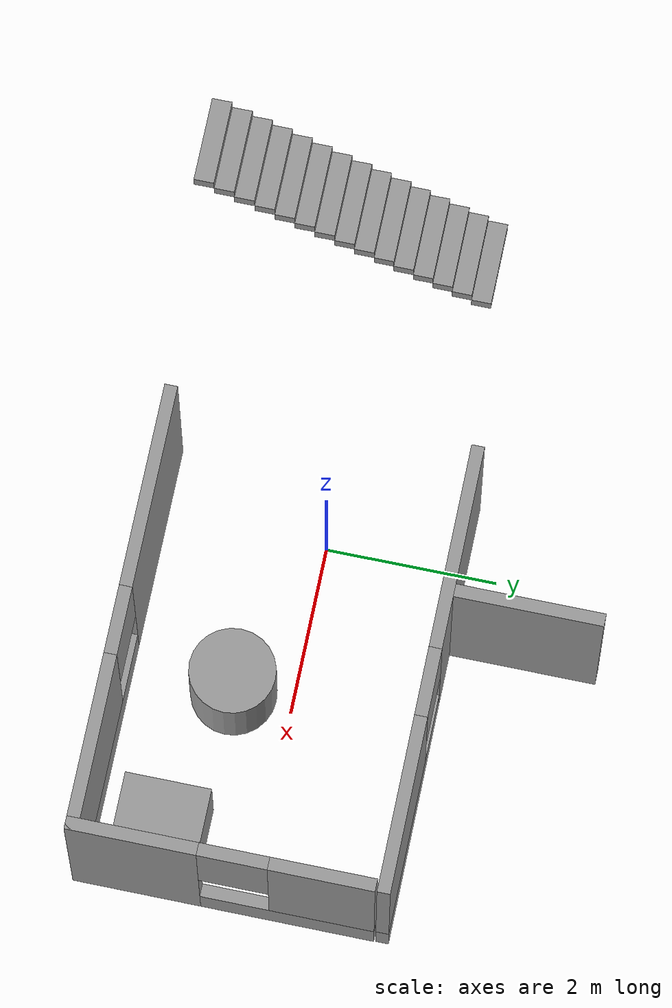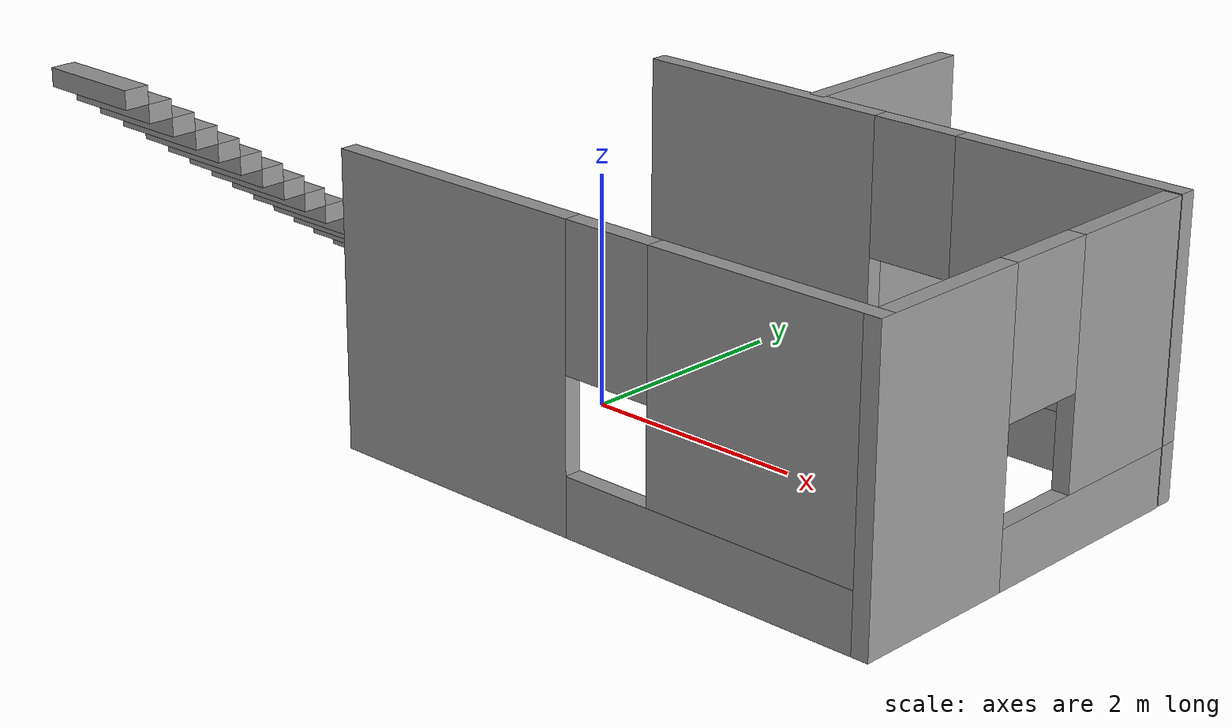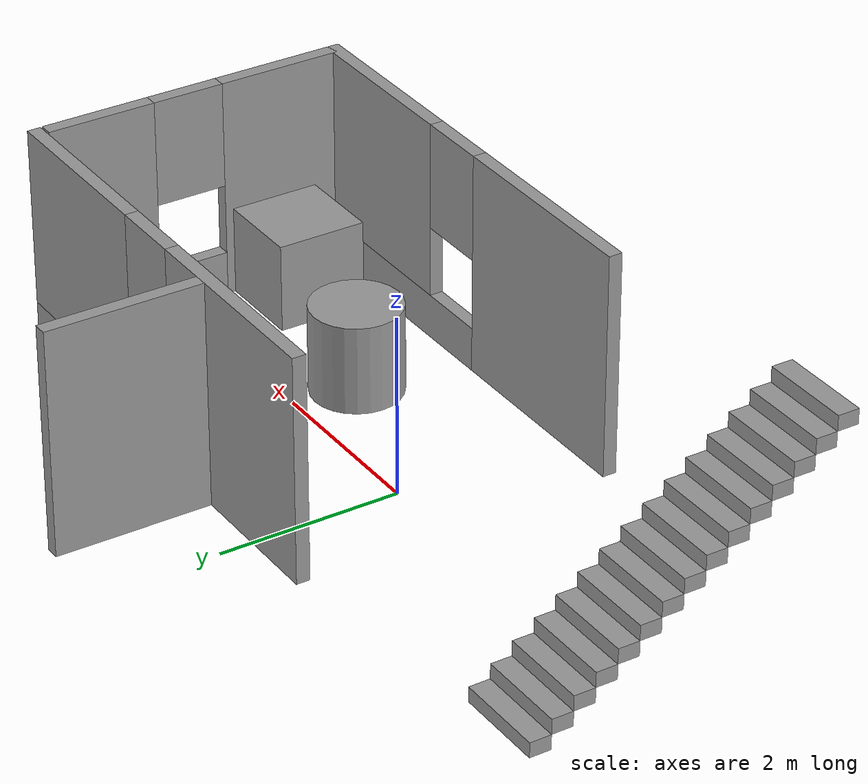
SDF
<sdf version="1.7">
 <model name="housing">
  <link name="Stairs_2">
   <visual name="Stairs_2_Visual_0">
    <pose>-3.77414 1.15965 0.083333 0 -0 0</pose>
    <geometry><box><size>1 0.233333 0.166667</size></box></geometry>
    <material>
     <script><uri>file://media/materials/scripts/gazebo.material</uri><name>Gazebo/Grey</name></script>
     <ambient>1 1 1 1</ambient>
     <shader type="pixel"/>
    </material>
    <meta><layer>0</layer></meta>
   </visual>
   <visual name="Stairs_2_Visual_1">
    <pose>-3.77414 0.926314 0.25 0 -0 0</pose>
    <geometry><box><size>1 0.233333 0.166667</size></box></geometry>
    <material>
     <script><uri>file://media/materials/scripts/gazebo.material</uri><name>Gazebo/Grey</name></script>
     <ambient>1 1 1 1</ambient>
     <shader type="pixel"/>
    </material>
    <meta><layer>0</layer></meta>
   </visual>
   <visual name="Stairs_2_Visual_2">
    <pose>-3.77414 0.692981 0.416667 0 -0 0</pose>
    <geometry><box><size>1 0.233333 0.166667</size></box></geometry>
    <material>
     <script><uri>file://media/materials/scripts/gazebo.material</uri><name>Gazebo/Grey</name></script>
     <ambient>1 1 1 1</ambient>
     <shader type="pixel"/>
    </material>
    <meta><layer>0</layer></meta>
   </visual>
   <visual name="Stairs_2_Visual_3">
    <pose>-3.77414 0.459648 0.583333 0 -0 0</pose>
    <geometry><box><size>1 0.233333 0.166667</size></box></geometry>
    <material>
     <script><uri>file://media/materials/scripts/gazebo.material</uri><name>Gazebo/Grey</name></script>
     <ambient>1 1 1 1</ambient>
     <shader type="pixel"/>
    </material>
    <meta><layer>0</layer></meta>
   </visual>
   <visual name="Stairs_2_Visual_4">
    <pose>-3.77414 0.226314 0.75 0 -0 0</pose>
    <geometry><box><size>1 0.233333 0.166667</size></box></geometry>
    <material>
     <script><uri>file://media/materials/scripts/gazebo.material</uri><name>Gazebo/Grey</name></script>
     <ambient>1 1 1 1</ambient>
     <shader type="pixel"/>
    </material>
    <meta><layer>0</layer></meta>
   </visual>
   <visual name="Stairs_2_Visual_5">
    <pose>-3.77414 -0.007019 0.916667 0 -0 0</pose>
    <geometry><box><size>1 0.233333 0.166667</size></box></geometry>
    <material>
     <script><uri>file://media/materials/scripts/gazebo.material</uri><name>Gazebo/Grey</name></script>
     <ambient>1 1 1 1</ambient>
     <shader type="pixel"/>
    </material>
    <meta><layer>0</layer></meta>
   </visual>
   <visual name="Stairs_2_Visual_6">
    <pose>-3.77414 -0.240352 1.08333 0 -0 0</pose>
    <geometry><box><size>1 0.233333 0.166667</size></box></geometry>
    <material>
     <script><uri>file://media/materials/scripts/gazebo.material</uri><name>Gazebo/Grey</name></script>
     <ambient>1 1 1 1</ambient>
     <shader type="pixel"/>
    </material>
    <meta><layer>0</layer></meta>
   </visual>
   <visual name="Stairs_2_Visual_7">
    <pose>-3.77414 -0.473686 1.25 0 -0 0</pose>
    <geometry><box><size>1 0.233333 0.166667</size></box></geometry>
    <material>
     <script><uri>file://media/materials/scripts/gazebo.material</uri><name>Gazebo/Grey</name></script>
     <ambient>1 1 1 1</ambient>
     <shader type="pixel"/>
    </material>
    <meta><layer>0</layer></meta>
   </visual>
   <visual name="Stairs_2_Visual_8">
    <pose>-3.77414 -0.707019 1.41667 0 -0 0</pose>
    <geometry><box><size>1 0.233333 0.166667</size></box></geometry>
    <material>
     <script><uri>file://media/materials/scripts/gazebo.material</uri><name>Gazebo/Grey</name></script>
     <ambient>1 1 1 1</ambient>
     <shader type="pixel"/>
    </material>
    <meta><layer>0</layer></meta>
   </visual>
   <visual name="Stairs_2_Visual_9">
    <pose>-3.77414 -0.940352 1.58333 0 -0 0</pose>
    <geometry><box><size>1 0.233333 0.166667</size></box></geometry>
    <material>
     <script><uri>file://media/materials/scripts/gazebo.material</uri><name>Gazebo/Grey</name></script>
     <ambient>1 1 1 1</ambient>
     <shader type="pixel"/>
    </material>
    <meta><layer>0</layer></meta>
   </visual>
   <visual name="Stairs_2_Visual_10">
    <pose>-3.77414 -1.17369 1.75 0 -0 0</pose>
    <geometry><box><size>1 0.233333 0.166667</size></box></geometry>
    <material>
     <script><uri>file://media/materials/scripts/gazebo.material</uri><name>Gazebo/Grey</name></script>
     <ambient>1 1 1 1</ambient>
     <shader type="pixel"/>
    </material>
    <meta><layer>0</layer></meta>
   </visual>
   <visual name="Stairs_2_Visual_11">
    <pose>-3.77414 -1.40702 1.91667 0 -0 0</pose>
    <geometry><box><size>1 0.233333 0.166667</size></box></geometry>
    <material>
     <script><uri>file://media/materials/scripts/gazebo.material</uri><name>Gazebo/Grey</name></script>
     <ambient>1 1 1 1</ambient>
     <shader type="pixel"/>
    </material>
    <meta><layer>0</layer></meta>
   </visual>
   <visual name="Stairs_2_Visual_12">
    <pose>-3.77414 -1.64035 2.08333 0 -0 0</pose>
    <geometry><box><size>1 0.233333 0.166667</size></box></geometry>
    <material>
     <script><uri>file://media/materials/scripts/gazebo.material</uri><name>Gazebo/Grey</name></script>
     <ambient>1 1 1 1</ambient>
     <shader type="pixel"/>
    </material>
    <meta><layer>0</layer></meta>
   </visual>
   <visual name="Stairs_2_Visual_13">
    <pose>-3.77414 -1.87369 2.25 0 -0 0</pose>
    <geometry><box><size>1 0.233333 0.166667</size></box></geometry>
    <material>
     <script><uri>file://media/materials/scripts/gazebo.material</uri><name>Gazebo/Grey</name></script>
     <ambient>1 1 1 1</ambient>
     <shader type="pixel"/>
    </material>
    <meta><layer>0</layer></meta>
   </visual>
   <visual name="Stairs_2_Visual_14">
    <pose>-3.77414 -2.10702 2.41667 0 -0 0</pose>
    <geometry><box><size>1 0.233333 0.166667</size></box></geometry>
    <material>
     <script><uri>file://media/materials/scripts/gazebo.material</uri><name>Gazebo/Grey</name></script>
     <ambient>1 1 1 1</ambient>
     <shader type="pixel"/>
    </material>
    <meta><layer>0</layer></meta>
   </visual>
   <collision name="Stairs_2_Collision_0">
    <pose>-3.77414 1.15965 0.083333 0 -0 0</pose>
    <geometry><box><size>1 0.233333 0.166667</size></box></geometry>
    <surface>
     <friction>
      <ode><mu>1</mu><mu2>1</mu2><fdir1>0 0 0</fdir1><slip1>0</slip1><slip2>0</slip2></ode>
      <torsional>
       <coefficient>1</coefficient>
       <patch_radius>0</patch_radius>
       <surface_radius>0</surface_radius>
       <use_patch_radius>1</use_patch_radius>
       <ode><slip>0</slip></ode>
      </torsional>
     </friction>
     <bounce><restitution_coefficient>0</restitution_coefficient><threshold>1e+06</threshold></bounce>
     <contact>
      <collide_without_contact>0</collide_without_contact>
      <collide_without_contact_bitmask>1</collide_without_contact_bitmask>
      <collide_bitmask>1</collide_bitmask>
      <ode>
       <soft_cfm>0</soft_cfm>
       <soft_erp>0.2</soft_erp>
       <kp>1e+13</kp>
       <kd>1</kd>
       <max_vel>0.01</max_vel>
       <min_depth>0</min_depth>
      </ode>
      <bullet>
       <split_impulse>1</split_impulse>
       <split_impulse_penetration_threshold>-0.01</split_impulse_penetration_threshold>
       <soft_cfm>0</soft_cfm>
       <soft_erp>0.2</soft_erp>
       <kp>1e+13</kp>
       <kd>1</kd>
      </bullet>
     </contact>
    </surface>
   </collision>
   <collision name="Stairs_2_Collision_1">
    <pose>-3.77414 0.926314 0.25 0 -0 0</pose>
    <geometry><box><size>1 0.233333 0.166667</size></box></geometry>
    <surface>
     <friction>
      <ode><mu>1</mu><mu2>1</mu2><fdir1>0 0 0</fdir1><slip1>0</slip1><slip2>0</slip2></ode>
      <torsional>
       <coefficient>1</coefficient>
       <patch_radius>0</patch_radius>
       <surface_radius>0</surface_radius>
       <use_patch_radius>1</use_patch_radius>
       <ode><slip>0</slip></ode>
      </torsional>
     </friction>
     <bounce><restitution_coefficient>0</restitution_coefficient><threshold>1e+06</threshold></bounce>
     <contact>
      <collide_without_contact>0</collide_without_contact>
      <collide_without_contact_bitmask>1</collide_without_contact_bitmask>
      <collide_bitmask>1</collide_bitmask>
      <ode>
       <soft_cfm>0</soft_cfm>
       <soft_erp>0.2</soft_erp>
       <kp>1e+13</kp>
       <kd>1</kd>
       <max_vel>0.01</max_vel>
       <min_depth>0</min_depth>
      </ode>
      <bullet>
       <split_impulse>1</split_impulse>
       <split_impulse_penetration_threshold>-0.01</split_impulse_penetration_threshold>
       <soft_cfm>0</soft_cfm>
       <soft_erp>0.2</soft_erp>
       <kp>1e+13</kp>
       <kd>1</kd>
      </bullet>
     </contact>
    </surface>
   </collision>
   <collision name="Stairs_2_Collision_2">
    <pose>-3.77414 0.692981 0.416667 0 -0 0</pose>
    <geometry><box><size>1 0.233333 0.166667</size></box></geometry>
    <surface>
     <friction>
      <ode><mu>1</mu><mu2>1</mu2><fdir1>0 0 0</fdir1><slip1>0</slip1><slip2>0</slip2></ode>
      <torsional>
       <coefficient>1</coefficient>
       <patch_radius>0</patch_radius>
       <surface_radius>0</surface_radius>
       <use_patch_radius>1</use_patch_radius>
       <ode><slip>0</slip></ode>
      </torsional>
     </friction>
     <bounce><restitution_coefficient>0</restitution_coefficient><threshold>1e+06</threshold></bounce>
     <contact>
      <collide_without_contact>0</collide_without_contact>
      <collide_without_contact_bitmask>1</collide_without_contact_bitmask>
      <collide_bitmask>1</collide_bitmask>
      <ode>
       <soft_cfm>0</soft_cfm>
       <soft_erp>0.2</soft_erp>
       <kp>1e+13</kp>
       <kd>1</kd>
       <max_vel>0.01</max_vel>
       <min_depth>0</min_depth>
      </ode>
      <bullet>
       <split_impulse>1</split_impulse>
       <split_impulse_penetration_threshold>-0.01</split_impulse_penetration_threshold>
       <soft_cfm>0</soft_cfm>
       <soft_erp>0.2</soft_erp>
       <kp>1e+13</kp>
       <kd>1</kd>
      </bullet>
     </contact>
    </surface>
   </collision>
   <collision name="Stairs_2_Collision_3">
    <pose>-3.77414 0.459648 0.583333 0 -0 0</pose>
    <geometry><box><size>1 0.233333 0.166667</size></box></geometry>
    <surface>
     <friction>
      <ode><mu>1</mu><mu2>1</mu2><fdir1>0 0 0</fdir1><slip1>0</slip1><slip2>0</slip2></ode>
      <torsional>
       <coefficient>1</coefficient>
       <patch_radius>0</patch_radius>
       <surface_radius>0</surface_radius>
       <use_patch_radius>1</use_patch_radius>
       <ode><slip>0</slip></ode>
      </torsional>
     </friction>
     <bounce><restitution_coefficient>0</restitution_coefficient><threshold>1e+06</threshold></bounce>
     <contact>
      <collide_without_contact>0</collide_without_contact>
      <collide_without_contact_bitmask>1</collide_without_contact_bitmask>
      <collide_bitmask>1</collide_bitmask>
      <ode>
       <soft_cfm>0</soft_cfm>
       <soft_erp>0.2</soft_erp>
       <kp>1e+13</kp>
       <kd>1</kd>
       <max_vel>0.01</max_vel>
       <min_depth>0</min_depth>
      </ode>
      <bullet>
       <split_impulse>1</split_impulse>
       <split_impulse_penetration_threshold>-0.01</split_impulse_penetration_threshold>
       <soft_cfm>0</soft_cfm>
       <soft_erp>0.2</soft_erp>
       <kp>1e+13</kp>
       <kd>1</kd>
      </bullet>
     </contact>
    </surface>
   </collision>
   <collision name="Stairs_2_Collision_4">
    <pose>-3.77414 0.226314 0.75 0 -0 0</pose>
    <geometry><box><size>1 0.233333 0.166667</size></box></geometry>
    <surface>
     <friction>
      <ode><mu>1</mu><mu2>1</mu2><fdir1>0 0 0</fdir1><slip1>0</slip1><slip2>0</slip2></ode>
      <torsional>
       <coefficient>1</coefficient>
       <patch_radius>0</patch_radius>
       <surface_radius>0</surface_radius>
       <use_patch_radius>1</use_patch_radius>
       <ode><slip>0</slip></ode>
      </torsional>
     </friction>
     <bounce><restitution_coefficient>0</restitution_coefficient><threshold>1e+06</threshold></bounce>
     <contact>
      <collide_without_contact>0</collide_without_contact>
      <collide_without_contact_bitmask>1</collide_without_contact_bitmask>
      <collide_bitmask>1</collide_bitmask>
      <ode>
       <soft_cfm>0</soft_cfm>
       <soft_erp>0.2</soft_erp>
       <kp>1e+13</kp>
       <kd>1</kd>
       <max_vel>0.01</max_vel>
       <min_depth>0</min_depth>
      </ode>
      <bullet>
       <split_impulse>1</split_impulse>
       <split_impulse_penetration_threshold>-0.01</split_impulse_penetration_threshold>
       <soft_cfm>0</soft_cfm>
       <soft_erp>0.2</soft_erp>
       <kp>1e+13</kp>
       <kd>1</kd>
      </bullet>
     </contact>
    </surface>
   </collision>
   <collision name="Stairs_2_Collision_5">
    <pose>-3.77414 -0.007019 0.916667 0 -0 0</pose>
    <geometry><box><size>1 0.233333 0.166667</size></box></geometry>
    <surface>
     <friction>
      <ode><mu>1</mu><mu2>1</mu2><fdir1>0 0 0</fdir1><slip1>0</slip1><slip2>0</slip2></ode>
      <torsional>
       <coefficient>1</coefficient>
       <patch_radius>0</patch_radius>
       <surface_radius>0</surface_radius>
       <use_patch_radius>1</use_patch_radius>
       <ode><slip>0</slip></ode>
      </torsional>
     </friction>
     <bounce><restitution_coefficient>0</restitution_coefficient><threshold>1e+06</threshold></bounce>
     <contact>
      <collide_without_contact>0</collide_without_contact>
      <collide_without_contact_bitmask>1</collide_without_contact_bitmask>
      <collide_bitmask>1</collide_bitmask>
      <ode>
       <soft_cfm>0</soft_cfm>
       <soft_erp>0.2</soft_erp>
       <kp>1e+13</kp>
       <kd>1</kd>
       <max_vel>0.01</max_vel>
       <min_depth>0</min_depth>
      </ode>
      <bullet>
       <split_impulse>1</split_impulse>
       <split_impulse_penetration_threshold>-0.01</split_impulse_penetration_threshold>
       <soft_cfm>0</soft_cfm>
       <soft_erp>0.2</soft_erp>
       <kp>1e+13</kp>
       <kd>1</kd>
      </bullet>
     </contact>
    </surface>
   </collision>
   <collision name="Stairs_2_Collision_6">
    <pose>-3.77414 -0.240352 1.08333 0 -0 0</pose>
    <geometry><box><size>1 0.233333 0.166667</size></box></geometry>
    <surface>
     <friction>
      <ode><mu>1</mu><mu2>1</mu2><fdir1>0 0 0</fdir1><slip1>0</slip1><slip2>0</slip2></ode>
      <torsional>
       <coefficient>1</coefficient>
       <patch_radius>0</patch_radius>
       <surface_radius>0</surface_radius>
       <use_patch_radius>1</use_patch_radius>
       <ode><slip>0</slip></ode>
      </torsional>
     </friction>
     <bounce><restitution_coefficient>0</restitution_coefficient><threshold>1e+06</threshold></bounce>
     <contact>
      <collide_without_contact>0</collide_without_contact>
      <collide_without_contact_bitmask>1</collide_without_contact_bitmask>
      <collide_bitmask>1</collide_bitmask>
      <ode>
       <soft_cfm>0</soft_cfm>
       <soft_erp>0.2</soft_erp>
       <kp>1e+13</kp>
       <kd>1</kd>
       <max_vel>0.01</max_vel>
       <min_depth>0</min_depth>
      </ode>
      <bullet>
       <split_impulse>1</split_impulse>
       <split_impulse_penetration_threshold>-0.01</split_impulse_penetration_threshold>
       <soft_cfm>0</soft_cfm>
       <soft_erp>0.2</soft_erp>
       <kp>1e+13</kp>
       <kd>1</kd>
      </bullet>
     </contact>
    </surface>
   </collision>
   <collision name="Stairs_2_Collision_7">
    <pose>-3.77414 -0.473686 1.25 0 -0 0</pose>
    <geometry><box><size>1 0.233333 0.166667</size></box></geometry>
    <surface>
     <friction>
      <ode><mu>1</mu><mu2>1</mu2><fdir1>0 0 0</fdir1><slip1>0</slip1><slip2>0</slip2></ode>
      <torsional>
       <coefficient>1</coefficient>
       <patch_radius>0</patch_radius>
       <surface_radius>0</surface_radius>
       <use_patch_radius>1</use_patch_radius>
       <ode><slip>0</slip></ode>
      </torsional>
     </friction>
     <bounce><restitution_coefficient>0</restitution_coefficient><threshold>1e+06</threshold></bounce>
     <contact>
      <collide_without_contact>0</collide_without_contact>
      <collide_without_contact_bitmask>1</collide_without_contact_bitmask>
      <collide_bitmask>1</collide_bitmask>
      <ode>
       <soft_cfm>0</soft_cfm>
       <soft_erp>0.2</soft_erp>
       <kp>1e+13</kp>
       <kd>1</kd>
       <max_vel>0.01</max_vel>
       <min_depth>0</min_depth>
      </ode>
      <bullet>
       <split_impulse>1</split_impulse>
       <split_impulse_penetration_threshold>-0.01</split_impulse_penetration_threshold>
       <soft_cfm>0</soft_cfm>
       <soft_erp>0.2</soft_erp>
       <kp>1e+13</kp>
       <kd>1</kd>
      </bullet>
     </contact>
    </surface>
   </collision>
   <collision name="Stairs_2_Collision_8">
    <pose>-3.77414 -0.707019 1.41667 0 -0 0</pose>
    <geometry><box><size>1 0.233333 0.166667</size></box></geometry>
    <surface>
     <friction>
      <ode><mu>1</mu><mu2>1</mu2><fdir1>0 0 0</fdir1><slip1>0</slip1><slip2>0</slip2></ode>
      <torsional>
       <coefficient>1</coefficient>
       <patch_radius>0</patch_radius>
       <surface_radius>0</surface_radius>
       <use_patch_radius>1</use_patch_radius>
       <ode><slip>0</slip></ode>
      </torsional>
     </friction>
     <bounce><restitution_coefficient>0</restitution_coefficient><threshold>1e+06</threshold></bounce>
     <contact>
      <collide_without_contact>0</collide_without_contact>
      <collide_without_contact_bitmask>1</collide_without_contact_bitmask>
      <collide_bitmask>1</collide_bitmask>
      <ode>
       <soft_cfm>0</soft_cfm>
       <soft_erp>0.2</soft_erp>
       <kp>1e+13</kp>
       <kd>1</kd>
       <max_vel>0.01</max_vel>
       <min_depth>0</min_depth>
      </ode>
      <bullet>
       <split_impulse>1</split_impulse>
       <split_impulse_penetration_threshold>-0.01</split_impulse_penetration_threshold>
       <soft_cfm>0</soft_cfm>
       <soft_erp>0.2</soft_erp>
       <kp>1e+13</kp>
       <kd>1</kd>
      </bullet>
     </contact>
    </surface>
   </collision>
   <collision name="Stairs_2_Collision_9">
    <pose>-3.77414 -0.940352 1.58333 0 -0 0</pose>
    <geometry><box><size>1 0.233333 0.166667</size></box></geometry>
    <surface>
     <friction>
      <ode><mu>1</mu><mu2>1</mu2><fdir1>0 0 0</fdir1><slip1>0</slip1><slip2>0</slip2></ode>
      <torsional>
       <coefficient>1</coefficient>
       <patch_radius>0</patch_radius>
       <surface_radius>0</surface_radius>
       <use_patch_radius>1</use_patch_radius>
       <ode><slip>0</slip></ode>
      </torsional>
     </friction>
     <bounce><restitution_coefficient>0</restitution_coefficient><threshold>1e+06</threshold></bounce>
     <contact>
      <collide_without_contact>0</collide_without_contact>
      <collide_without_contact_bitmask>1</collide_without_contact_bitmask>
      <collide_bitmask>1</collide_bitmask>
      <ode>
       <soft_cfm>0</soft_cfm>
       <soft_erp>0.2</soft_erp>
       <kp>1e+13</kp>
       <kd>1</kd>
       <max_vel>0.01</max_vel>
       <min_depth>0</min_depth>
      </ode>
      <bullet>
       <split_impulse>1</split_impulse>
       <split_impulse_penetration_threshold>-0.01</split_impulse_penetration_threshold>
       <soft_cfm>0</soft_cfm>
       <soft_erp>0.2</soft_erp>
       <kp>1e+13</kp>
       <kd>1</kd>
      </bullet>
     </contact>
    </surface>
   </collision>
   <collision name="Stairs_2_Collision_10">
    <pose>-3.77414 -1.17369 1.75 0 -0 0</pose>
    <geometry><box><size>1 0.233333 0.166667</size></box></geometry>
    <surface>
     <friction>
      <ode><mu>1</mu><mu2>1</mu2><fdir1>0 0 0</fdir1><slip1>0</slip1><slip2>0</slip2></ode>
      <torsional>
       <coefficient>1</coefficient>
       <patch_radius>0</patch_radius>
       <surface_radius>0</surface_radius>
       <use_patch_radius>1</use_patch_radius>
       <ode><slip>0</slip></ode>
      </torsional>
     </friction>
     <bounce><restitution_coefficient>0</restitution_coefficient><threshold>1e+06</threshold></bounce>
     <contact>
      <collide_without_contact>0</collide_without_contact>
      <collide_without_contact_bitmask>1</collide_without_contact_bitmask>
      <collide_bitmask>1</collide_bitmask>
      <ode>
       <soft_cfm>0</soft_cfm>
       <soft_erp>0.2</soft_erp>
       <kp>1e+13</kp>
       <kd>1</kd>
       <max_vel>0.01</max_vel>
       <min_depth>0</min_depth>
      </ode>
      <bullet>
       <split_impulse>1</split_impulse>
       <split_impulse_penetration_threshold>-0.01</split_impulse_penetration_threshold>
       <soft_cfm>0</soft_cfm>
       <soft_erp>0.2</soft_erp>
       <kp>1e+13</kp>
       <kd>1</kd>
      </bullet>
     </contact>
    </surface>
   </collision>
   <collision name="Stairs_2_Collision_11">
    <pose>-3.77414 -1.40702 1.91667 0 -0 0</pose>
    <geometry><box><size>1 0.233333 0.166667</size></box></geometry>
    <surface>
     <friction>
      <ode><mu>1</mu><mu2>1</mu2><fdir1>0 0 0</fdir1><slip1>0</slip1><slip2>0</slip2></ode>
      <torsional>
       <coefficient>1</coefficient>
       <patch_radius>0</patch_radius>
       <surface_radius>0</surface_radius>
       <use_patch_radius>1</use_patch_radius>
       <ode><slip>0</slip></ode>
      </torsional>
     </friction>
     <bounce><restitution_coefficient>0</restitution_coefficient><threshold>1e+06</threshold></bounce>
     <contact>
      <collide_without_contact>0</collide_without_contact>
      <collide_without_contact_bitmask>1</collide_without_contact_bitmask>
      <collide_bitmask>1</collide_bitmask>
      <ode>
       <soft_cfm>0</soft_cfm>
       <soft_erp>0.2</soft_erp>
       <kp>1e+13</kp>
       <kd>1</kd>
       <max_vel>0.01</max_vel>
       <min_depth>0</min_depth>
      </ode>
      <bullet>
       <split_impulse>1</split_impulse>
       <split_impulse_penetration_threshold>-0.01</split_impulse_penetration_threshold>
       <soft_cfm>0</soft_cfm>
       <soft_erp>0.2</soft_erp>
       <kp>1e+13</kp>
       <kd>1</kd>
      </bullet>
     </contact>
    </surface>
   </collision>
   <collision name="Stairs_2_Collision_12">
    <pose>-3.77414 -1.64035 2.08333 0 -0 0</pose>
    <geometry><box><size>1 0.233333 0.166667</size></box></geometry>
    <surface>
     <friction>
      <ode><mu>1</mu><mu2>1</mu2><fdir1>0 0 0</fdir1><slip1>0</slip1><slip2>0</slip2></ode>
      <torsional>
       <coefficient>1</coefficient>
       <patch_radius>0</patch_radius>
       <surface_radius>0</surface_radius>
       <use_patch_radius>1</use_patch_radius>
       <ode><slip>0</slip></ode>
      </torsional>
     </friction>
     <bounce><restitution_coefficient>0</restitution_coefficient><threshold>1e+06</threshold></bounce>
     <contact>
      <collide_without_contact>0</collide_without_contact>
      <collide_without_contact_bitmask>1</collide_without_contact_bitmask>
      <collide_bitmask>1</collide_bitmask>
      <ode>
       <soft_cfm>0</soft_cfm>
       <soft_erp>0.2</soft_erp>
       <kp>1e+13</kp>
       <kd>1</kd>
       <max_vel>0.01</max_vel>
       <min_depth>0</min_depth>
      </ode>
      <bullet>
       <split_impulse>1</split_impulse>
       <split_impulse_penetration_threshold>-0.01</split_impulse_penetration_threshold>
       <soft_cfm>0</soft_cfm>
       <soft_erp>0.2</soft_erp>
       <kp>1e+13</kp>
       <kd>1</kd>
      </bullet>
     </contact>
    </surface>
   </collision>
   <collision name="Stairs_2_Collision_13">
    <pose>-3.77414 -1.87369 2.25 0 -0 0</pose>
    <geometry><box><size>1 0.233333 0.166667</size></box></geometry>
    <surface>
     <friction>
      <ode><mu>1</mu><mu2>1</mu2><fdir1>0 0 0</fdir1><slip1>0</slip1><slip2>0</slip2></ode>
      <torsional>
       <coefficient>1</coefficient>
       <patch_radius>0</patch_radius>
       <surface_radius>0</surface_radius>
       <use_patch_radius>1</use_patch_radius>
       <ode><slip>0</slip></ode>
      </torsional>
     </friction>
     <bounce><restitution_coefficient>0</restitution_coefficient><threshold>1e+06</threshold></bounce>
     <contact>
      <collide_without_contact>0</collide_without_contact>
      <collide_without_contact_bitmask>1</collide_without_contact_bitmask>
      <collide_bitmask>1</collide_bitmask>
      <ode>
       <soft_cfm>0</soft_cfm>
       <soft_erp>0.2</soft_erp>
       <kp>1e+13</kp>
       <kd>1</kd>
       <max_vel>0.01</max_vel>
       <min_depth>0</min_depth>
      </ode>
      <bullet>
       <split_impulse>1</split_impulse>
       <split_impulse_penetration_threshold>-0.01</split_impulse_penetration_threshold>
       <soft_cfm>0</soft_cfm>
       <soft_erp>0.2</soft_erp>
       <kp>1e+13</kp>
       <kd>1</kd>
      </bullet>
     </contact>
    </surface>
   </collision>
   <collision name="Stairs_2_Collision_14">
    <pose>-3.77414 -2.10702 2.41667 0 -0 0</pose>
    <geometry><box><size>1 0.233333 0.166667</size></box></geometry>
    <surface>
     <friction>
      <ode><mu>1</mu><mu2>1</mu2><fdir1>0 0 0</fdir1><slip1>0</slip1><slip2>0</slip2></ode>
      <torsional>
       <coefficient>1</coefficient>
       <patch_radius>0</patch_radius>
       <surface_radius>0</surface_radius>
       <use_patch_radius>1</use_patch_radius>
       <ode><slip>0</slip></ode>
      </torsional>
     </friction>
     <bounce><restitution_coefficient>0</restitution_coefficient><threshold>1e+06</threshold></bounce>
     <contact>
      <collide_without_contact>0</collide_without_contact>
      <collide_without_contact_bitmask>1</collide_without_contact_bitmask>
      <collide_bitmask>1</collide_bitmask>
      <ode>
       <soft_cfm>0</soft_cfm>
       <soft_erp>0.2</soft_erp>
       <kp>1e+13</kp>
       <kd>1</kd>
       <max_vel>0.01</max_vel>
       <min_depth>0</min_depth>
      </ode>
      <bullet>
       <split_impulse>1</split_impulse>
       <split_impulse_penetration_threshold>-0.01</split_impulse_penetration_threshold>
       <soft_cfm>0</soft_cfm>
       <soft_erp>0.2</soft_erp>
       <kp>1e+13</kp>
       <kd>1</kd>
      </bullet>
     </contact>
    </surface>
   </collision>
  </link>
  <link name="Wall_51_clone_clone_clone">
   <pose>0.871259 2.47337 0 0 0 -1.5708</pose>
   <visual name="Wall_51_Visual">
    <pose>0 0 1.25 0 -0 0</pose>
    <geometry><box><size>1.75 0.15 2.5</size></box></geometry>
    <material>
     <script><uri>file://media/materials/scripts/gazebo.material</uri><name>Gazebo/Grey</name></script>
     <ambient>1 1 1 1</ambient>
     <shader type="pixel"/>
    </material>
    <meta><layer>0</layer></meta>
   </visual>
   <collision name="Wall_51_Collision">
    <pose>0 0 1.25 0 -0 0</pose>
    <geometry><box><size>1.75 0.15 2.5</size></box></geometry>
    <surface>
     <friction>
      <ode><mu>1</mu><mu2>1</mu2><fdir1>0 0 0</fdir1><slip1>0</slip1><slip2>0</slip2></ode>
      <torsional>
       <coefficient>1</coefficient>
       <patch_radius>0</patch_radius>
       <surface_radius>0</surface_radius>
       <use_patch_radius>1</use_patch_radius>
       <ode><slip>0</slip></ode>
      </torsional>
     </friction>
     <bounce><restitution_coefficient>0</restitution_coefficient><threshold>1e+06</threshold></bounce>
     <contact>
      <collide_without_contact>0</collide_without_contact>
      <collide_without_contact_bitmask>1</collide_without_contact_bitmask>
      <collide_bitmask>1</collide_bitmask>
      <ode>
       <soft_cfm>0</soft_cfm>
       <soft_erp>0.2</soft_erp>
       <kp>1e+13</kp>
       <kd>1</kd>
       <max_vel>0.01</max_vel>
       <min_depth>0</min_depth>
      </ode>
      <bullet>
       <split_impulse>1</split_impulse>
       <split_impulse_penetration_threshold>-0.01</split_impulse_penetration_threshold>
       <soft_cfm>0</soft_cfm>
       <soft_erp>0.2</soft_erp>
       <kp>1e+13</kp>
       <kd>1</kd>
      </bullet>
     </contact>
    </surface>
   </collision>
  </link>
  <link name="Wall_54">
   <pose>1.8 -1.95535 0 0 -0 0</pose>
   <visual name="Wall_54_Visual_0">
    <pose>-1.42713 0 1.25 0 -0 0</pose>
    <geometry><box><size>2.39574 0.15 2.5</size></box></geometry>
    <material>
     <script><uri>file://media/materials/scripts/gazebo.material</uri><name>Gazebo/Grey</name></script>
     <ambient>1 1 1 1</ambient>
     <shader type="pixel"/>
    </material>
    <meta><layer>0</layer></meta>
   </visual>
   <visual name="Wall_54_Visual_1">
    <pose>1.19787 0 0.25 0 -0 0</pose>
    <geometry><box><size>2.85426 0.15 0.5</size></box></geometry>
    <material>
     <script><uri>file://media/materials/scripts/gazebo.material</uri><name>Gazebo/Grey</name></script>
     <ambient>1 1 1 1</ambient>
     <shader type="pixel"/>
    </material>
    <meta><layer>0</layer></meta>
   </visual>
   <visual name="Wall_54_Visual_2">
    <pose>1.59787 0 1.5 0 -0 0</pose>
    <geometry><box><size>2.05426 0.15 2</size></box></geometry>
    <material>
     <script><uri>file://media/materials/scripts/gazebo.material</uri><name>Gazebo/Grey</name></script>
     <ambient>1 1 1 1</ambient>
     <shader type="pixel"/>
    </material>
    <meta><layer>0</layer></meta>
   </visual>
   <visual name="Wall_54_Visual_3">
    <pose>0.170737 0 1.9 0 -0 0</pose>
    <geometry><box><size>0.8 0.15 1.2</size></box></geometry>
    <material>
     <script><uri>file://media/materials/scripts/gazebo.material</uri><name>Gazebo/Grey</name></script>
     <ambient>1 1 1 1</ambient>
     <shader type="pixel"/>
    </material>
    <meta><layer>0</layer></meta>
   </visual>
   <collision name="Wall_54_Collision_0">
    <pose>-1.42713 0 1.25 0 -0 0</pose>
    <geometry><box><size>2.39574 0.15 2.5</size></box></geometry>
    <surface>
     <friction>
      <ode><mu>1</mu><mu2>1</mu2><fdir1>0 0 0</fdir1><slip1>0</slip1><slip2>0</slip2></ode>
      <torsional>
       <coefficient>1</coefficient>
       <patch_radius>0</patch_radius>
       <surface_radius>0</surface_radius>
       <use_patch_radius>1</use_patch_radius>
       <ode><slip>0</slip></ode>
      </torsional>
     </friction>
     <bounce><restitution_coefficient>0</restitution_coefficient><threshold>1e+06</threshold></bounce>
     <contact>
      <collide_without_contact>0</collide_without_contact>
      <collide_without_contact_bitmask>1</collide_without_contact_bitmask>
      <collide_bitmask>1</collide_bitmask>
      <ode>
       <soft_cfm>0</soft_cfm>
       <soft_erp>0.2</soft_erp>
       <kp>1e+13</kp>
       <kd>1</kd>
       <max_vel>0.01</max_vel>
       <min_depth>0</min_depth>
      </ode>
      <bullet>
       <split_impulse>1</split_impulse>
       <split_impulse_penetration_threshold>-0.01</split_impulse_penetration_threshold>
       <soft_cfm>0</soft_cfm>
       <soft_erp>0.2</soft_erp>
       <kp>1e+13</kp>
       <kd>1</kd>
      </bullet>
     </contact>
    </surface>
   </collision>
   <collision name="Wall_54_Collision_1">
    <pose>1.19787 0 0.25 0 -0 0</pose>
    <geometry><box><size>2.85426 0.15 0.5</size></box></geometry>
    <surface>
     <friction>
      <ode><mu>1</mu><mu2>1</mu2><fdir1>0 0 0</fdir1><slip1>0</slip1><slip2>0</slip2></ode>
      <torsional>
       <coefficient>1</coefficient>
       <patch_radius>0</patch_radius>
       <surface_radius>0</surface_radius>
       <use_patch_radius>1</use_patch_radius>
       <ode><slip>0</slip></ode>
      </torsional>
     </friction>
     <bounce><restitution_coefficient>0</restitution_coefficient><threshold>1e+06</threshold></bounce>
     <contact>
      <collide_without_contact>0</collide_without_contact>
      <collide_without_contact_bitmask>1</collide_without_contact_bitmask>
      <collide_bitmask>1</collide_bitmask>
      <ode>
       <soft_cfm>0</soft_cfm>
       <soft_erp>0.2</soft_erp>
       <kp>1e+13</kp>
       <kd>1</kd>
       <max_vel>0.01</max_vel>
       <min_depth>0</min_depth>
      </ode>
      <bullet>
       <split_impulse>1</split_impulse>
       <split_impulse_penetration_threshold>-0.01</split_impulse_penetration_threshold>
       <soft_cfm>0</soft_cfm>
       <soft_erp>0.2</soft_erp>
       <kp>1e+13</kp>
       <kd>1</kd>
      </bullet>
     </contact>
    </surface>
   </collision>
   <collision name="Wall_54_Collision_2">
    <pose>1.59787 0 1.5 0 -0 0</pose>
    <geometry><box><size>2.05426 0.15 2</size></box></geometry>
    <surface>
     <friction>
      <ode><mu>1</mu><mu2>1</mu2><fdir1>0 0 0</fdir1><slip1>0</slip1><slip2>0</slip2></ode>
      <torsional>
       <coefficient>1</coefficient>
       <patch_radius>0</patch_radius>
       <surface_radius>0</surface_radius>
       <use_patch_radius>1</use_patch_radius>
       <ode><slip>0</slip></ode>
      </torsional>
     </friction>
     <bounce><restitution_coefficient>0</restitution_coefficient><threshold>1e+06</threshold></bounce>
     <contact>
      <collide_without_contact>0</collide_without_contact>
      <collide_without_contact_bitmask>1</collide_without_contact_bitmask>
      <collide_bitmask>1</collide_bitmask>
      <ode>
       <soft_cfm>0</soft_cfm>
       <soft_erp>0.2</soft_erp>
       <kp>1e+13</kp>
       <kd>1</kd>
       <max_vel>0.01</max_vel>
       <min_depth>0</min_depth>
      </ode>
      <bullet>
       <split_impulse>1</split_impulse>
       <split_impulse_penetration_threshold>-0.01</split_impulse_penetration_threshold>
       <soft_cfm>0</soft_cfm>
       <soft_erp>0.2</soft_erp>
       <kp>1e+13</kp>
       <kd>1</kd>
      </bullet>
     </contact>
    </surface>
   </collision>
   <collision name="Wall_54_Collision_3">
    <pose>0.170737 0 1.9 0 -0 0</pose>
    <geometry><box><size>0.8 0.15 1.2</size></box></geometry>
    <surface>
     <friction>
      <ode><mu>1</mu><mu2>1</mu2><fdir1>0 0 0</fdir1><slip1>0</slip1><slip2>0</slip2></ode>
      <torsional>
       <coefficient>1</coefficient>
       <patch_radius>0</patch_radius>
       <surface_radius>0</surface_radius>
       <use_patch_radius>1</use_patch_radius>
       <ode><slip>0</slip></ode>
      </torsional>
     </friction>
     <bounce><restitution_coefficient>0</restitution_coefficient><threshold>1e+06</threshold></bounce>
     <contact>
      <collide_without_contact>0</collide_without_contact>
      <collide_without_contact_bitmask>1</collide_without_contact_bitmask>
      <collide_bitmask>1</collide_bitmask>
      <ode>
       <soft_cfm>0</soft_cfm>
       <soft_erp>0.2</soft_erp>
       <kp>1e+13</kp>
       <kd>1</kd>
       <max_vel>0.01</max_vel>
       <min_depth>0</min_depth>
      </ode>
      <bullet>
       <split_impulse>1</split_impulse>
       <split_impulse_penetration_threshold>-0.01</split_impulse_penetration_threshold>
       <soft_cfm>0</soft_cfm>
       <soft_erp>0.2</soft_erp>
       <kp>1e+13</kp>
       <kd>1</kd>
      </bullet>
     </contact>
    </surface>
   </collision>
  </link>
  <link name="Wall_54_clone_clone">
   <pose>1.79438 1.5644 0 0 -0 0</pose>
   <visual name="Wall_54_Visual_2">
    <pose>1.59787 0 1.5 0 -0 0</pose>
    <geometry><box><size>2.05426 0.15 2</size></box></geometry>
    <material>
     <script><uri>file://media/materials/scripts/gazebo.material</uri><name>Gazebo/Grey</name></script>
     <ambient>1 1 1 1</ambient>
     <shader type="pixel"/>
    </material>
    <meta><layer>0</layer></meta>
   </visual>
   <visual name="Wall_54_Visual_3">
    <pose>0.170737 0 1.9 0 -0 0</pose>
    <geometry><box><size>0.8 0.15 1.2</size></box></geometry>
    <material>
     <script><uri>file://media/materials/scripts/gazebo.material</uri><name>Gazebo/Grey</name></script>
     <ambient>1 1 1 1</ambient>
     <shader type="pixel"/>
    </material>
    <meta><layer>0</layer></meta>
   </visual>
   <visual name="Wall_54_Visual_1">
    <pose>1.19787 0 0.25 0 -0 0</pose>
    <geometry><box><size>2.85426 0.15 0.5</size></box></geometry>
    <material>
     <script><uri>file://media/materials/scripts/gazebo.material</uri><name>Gazebo/Grey</name></script>
     <ambient>1 1 1 1</ambient>
     <shader type="pixel"/>
    </material>
    <meta><layer>0</layer></meta>
   </visual>
   <visual name="Wall_54_Visual_0">
    <pose>-1.42713 0 1.25 0 -0 0</pose>
    <geometry><box><size>2.39574 0.15 2.5</size></box></geometry>
    <material>
     <script><uri>file://media/materials/scripts/gazebo.material</uri><name>Gazebo/Grey</name></script>
     <ambient>1 1 1 1</ambient>
     <shader type="pixel"/>
    </material>
    <meta><layer>0</layer></meta>
   </visual>
   <collision name="Wall_54_Collision_1">
    <pose>1.19787 0 0.25 0 -0 0</pose>
    <geometry><box><size>2.85426 0.15 0.5</size></box></geometry>
    <surface>
     <friction>
      <ode><mu>1</mu><mu2>1</mu2><fdir1>0 0 0</fdir1><slip1>0</slip1><slip2>0</slip2></ode>
      <torsional>
       <coefficient>1</coefficient>
       <patch_radius>0</patch_radius>
       <surface_radius>0</surface_radius>
       <use_patch_radius>1</use_patch_radius>
       <ode><slip>0</slip></ode>
      </torsional>
     </friction>
     <bounce><restitution_coefficient>0</restitution_coefficient><threshold>1e+06</threshold></bounce>
     <contact>
      <collide_without_contact>0</collide_without_contact>
      <collide_without_contact_bitmask>1</collide_without_contact_bitmask>
      <collide_bitmask>1</collide_bitmask>
      <ode>
       <soft_cfm>0</soft_cfm>
       <soft_erp>0.2</soft_erp>
       <kp>1e+13</kp>
       <kd>1</kd>
       <max_vel>0.01</max_vel>
       <min_depth>0</min_depth>
      </ode>
      <bullet>
       <split_impulse>1</split_impulse>
       <split_impulse_penetration_threshold>-0.01</split_impulse_penetration_threshold>
       <soft_cfm>0</soft_cfm>
       <soft_erp>0.2</soft_erp>
       <kp>1e+13</kp>
       <kd>1</kd>
      </bullet>
     </contact>
    </surface>
   </collision>
   <collision name="Wall_54_Collision_2">
    <pose>1.59787 0 1.5 0 -0 0</pose>
    <geometry><box><size>2.05426 0.15 2</size></box></geometry>
    <surface>
     <friction>
      <ode><mu>1</mu><mu2>1</mu2><fdir1>0 0 0</fdir1><slip1>0</slip1><slip2>0</slip2></ode>
      <torsional>
       <coefficient>1</coefficient>
       <patch_radius>0</patch_radius>
       <surface_radius>0</surface_radius>
       <use_patch_radius>1</use_patch_radius>
       <ode><slip>0</slip></ode>
      </torsional>
     </friction>
     <bounce><restitution_coefficient>0</restitution_coefficient><threshold>1e+06</threshold></bounce>
     <contact>
      <collide_without_contact>0</collide_without_contact>
      <collide_without_contact_bitmask>1</collide_without_contact_bitmask>
      <collide_bitmask>1</collide_bitmask>
      <ode>
       <soft_cfm>0</soft_cfm>
       <soft_erp>0.2</soft_erp>
       <kp>1e+13</kp>
       <kd>1</kd>
       <max_vel>0.01</max_vel>
       <min_depth>0</min_depth>
      </ode>
      <bullet>
       <split_impulse>1</split_impulse>
       <split_impulse_penetration_threshold>-0.01</split_impulse_penetration_threshold>
       <soft_cfm>0</soft_cfm>
       <soft_erp>0.2</soft_erp>
       <kp>1e+13</kp>
       <kd>1</kd>
      </bullet>
     </contact>
    </surface>
   </collision>
   <collision name="Wall_54_Collision_0">
    <pose>-1.42713 0 1.25 0 -0 0</pose>
    <geometry><box><size>2.39574 0.15 2.5</size></box></geometry>
    <surface>
     <friction>
      <ode><mu>1</mu><mu2>1</mu2><fdir1>0 0 0</fdir1><slip1>0</slip1><slip2>0</slip2></ode>
      <torsional>
       <coefficient>1</coefficient>
       <patch_radius>0</patch_radius>
       <surface_radius>0</surface_radius>
       <use_patch_radius>1</use_patch_radius>
       <ode><slip>0</slip></ode>
      </torsional>
     </friction>
     <bounce><restitution_coefficient>0</restitution_coefficient><threshold>1e+06</threshold></bounce>
     <contact>
      <collide_without_contact>0</collide_without_contact>
      <collide_without_contact_bitmask>1</collide_without_contact_bitmask>
      <collide_bitmask>1</collide_bitmask>
      <ode>
       <soft_cfm>0</soft_cfm>
       <soft_erp>0.2</soft_erp>
       <kp>1e+13</kp>
       <kd>1</kd>
       <max_vel>0.01</max_vel>
       <min_depth>0</min_depth>
      </ode>
      <bullet>
       <split_impulse>1</split_impulse>
       <split_impulse_penetration_threshold>-0.01</split_impulse_penetration_threshold>
       <soft_cfm>0</soft_cfm>
       <soft_erp>0.2</soft_erp>
       <kp>1e+13</kp>
       <kd>1</kd>
      </bullet>
     </contact>
    </surface>
   </collision>
   <collision name="Wall_54_Collision_3">
    <pose>0.170737 0 1.9 0 -0 0</pose>
    <geometry><box><size>0.8 0.15 1.2</size></box></geometry>
    <surface>
     <friction>
      <ode><mu>1</mu><mu2>1</mu2><fdir1>0 0 0</fdir1><slip1>0</slip1><slip2>0</slip2></ode>
      <torsional>
       <coefficient>1</coefficient>
       <patch_radius>0</patch_radius>
       <surface_radius>0</surface_radius>
       <use_patch_radius>1</use_patch_radius>
       <ode><slip>0</slip></ode>
      </torsional>
     </friction>
     <bounce><restitution_coefficient>0</restitution_coefficient><threshold>1e+06</threshold></bounce>
     <contact>
      <collide_without_contact>0</collide_without_contact>
      <collide_without_contact_bitmask>1</collide_without_contact_bitmask>
      <collide_bitmask>1</collide_bitmask>
      <ode>
       <soft_cfm>0</soft_cfm>
       <soft_erp>0.2</soft_erp>
       <kp>1e+13</kp>
       <kd>1</kd>
       <max_vel>0.01</max_vel>
       <min_depth>0</min_depth>
      </ode>
      <bullet>
       <split_impulse>1</split_impulse>
       <split_impulse_penetration_threshold>-0.01</split_impulse_penetration_threshold>
       <soft_cfm>0</soft_cfm>
       <soft_erp>0.2</soft_erp>
       <kp>1e+13</kp>
       <kd>1</kd>
      </bullet>
     </contact>
    </surface>
   </collision>
  </link>
  <link name="Wall_55">
   <pose>4.35 -0.280353 0 0 -0 1.5708</pose>
   <visual name="Wall_55_Visual_0">
    <pose>-1.00547 0 1.25 0 -0 0</pose>
    <geometry><box><size>1.48906 0.15 2.5</size></box></geometry>
    <material>
     <script><uri>file://media/materials/scripts/gazebo.material</uri><name>Gazebo/Grey</name></script>
     <ambient>1 1 1 1</ambient>
     <shader type="pixel"/>
    </material>
    <meta><layer>0</layer></meta>
   </visual>
   <visual name="Wall_55_Visual_1">
    <pose>0.744531 0 0.25 0 -0 0</pose>
    <geometry><box><size>2.01094 0.15 0.5</size></box></geometry>
    <material>
     <script><uri>file://media/materials/scripts/gazebo.material</uri><name>Gazebo/Grey</name></script>
     <ambient>1 1 1 1</ambient>
     <shader type="pixel"/>
    </material>
    <meta><layer>0</layer></meta>
   </visual>
   <visual name="Wall_55_Visual_2">
    <pose>1.14453 0 1.5 0 -0 0</pose>
    <geometry><box><size>1.21094 0.15 2</size></box></geometry>
    <material>
     <script><uri>file://media/materials/scripts/gazebo.material</uri><name>Gazebo/Grey</name></script>
     <ambient>1 1 1 1</ambient>
     <shader type="pixel"/>
    </material>
    <meta><layer>0</layer></meta>
   </visual>
   <visual name="Wall_55_Visual_3">
    <pose>0.139061 0 1.9 0 -0 0</pose>
    <geometry><box><size>0.8 0.15 1.2</size></box></geometry>
    <material>
     <script><uri>file://media/materials/scripts/gazebo.material</uri><name>Gazebo/Grey</name></script>
     <ambient>1 1 1 1</ambient>
     <shader type="pixel"/>
    </material>
    <meta><layer>0</layer></meta>
   </visual>
   <collision name="Wall_55_Collision_0">
    <pose>-1.00547 0 1.25 0 -0 0</pose>
    <geometry><box><size>1.48906 0.15 2.5</size></box></geometry>
    <surface>
     <friction>
      <ode><mu>1</mu><mu2>1</mu2><fdir1>0 0 0</fdir1><slip1>0</slip1><slip2>0</slip2></ode>
      <torsional>
       <coefficient>1</coefficient>
       <patch_radius>0</patch_radius>
       <surface_radius>0</surface_radius>
       <use_patch_radius>1</use_patch_radius>
       <ode><slip>0</slip></ode>
      </torsional>
     </friction>
     <bounce><restitution_coefficient>0</restitution_coefficient><threshold>1e+06</threshold></bounce>
     <contact>
      <collide_without_contact>0</collide_without_contact>
      <collide_without_contact_bitmask>1</collide_without_contact_bitmask>
      <collide_bitmask>1</collide_bitmask>
      <ode>
       <soft_cfm>0</soft_cfm>
       <soft_erp>0.2</soft_erp>
       <kp>1e+13</kp>
       <kd>1</kd>
       <max_vel>0.01</max_vel>
       <min_depth>0</min_depth>
      </ode>
      <bullet>
       <split_impulse>1</split_impulse>
       <split_impulse_penetration_threshold>-0.01</split_impulse_penetration_threshold>
       <soft_cfm>0</soft_cfm>
       <soft_erp>0.2</soft_erp>
       <kp>1e+13</kp>
       <kd>1</kd>
      </bullet>
     </contact>
    </surface>
   </collision>
   <collision name="Wall_55_Collision_2">
    <pose>1.14453 0 1.5 0 -0 0</pose>
    <geometry><box><size>1.21094 0.15 2</size></box></geometry>
    <surface>
     <friction>
      <ode><mu>1</mu><mu2>1</mu2><fdir1>0 0 0</fdir1><slip1>0</slip1><slip2>0</slip2></ode>
      <torsional>
       <coefficient>1</coefficient>
       <patch_radius>0</patch_radius>
       <surface_radius>0</surface_radius>
       <use_patch_radius>1</use_patch_radius>
       <ode><slip>0</slip></ode>
      </torsional>
     </friction>
     <bounce><restitution_coefficient>0</restitution_coefficient><threshold>1e+06</threshold></bounce>
     <contact>
      <collide_without_contact>0</collide_without_contact>
      <collide_without_contact_bitmask>1</collide_without_contact_bitmask>
      <collide_bitmask>1</collide_bitmask>
      <ode>
       <soft_cfm>0</soft_cfm>
       <soft_erp>0.2</soft_erp>
       <kp>1e+13</kp>
       <kd>1</kd>
       <max_vel>0.01</max_vel>
       <min_depth>0</min_depth>
      </ode>
      <bullet>
       <split_impulse>1</split_impulse>
       <split_impulse_penetration_threshold>-0.01</split_impulse_penetration_threshold>
       <soft_cfm>0</soft_cfm>
       <soft_erp>0.2</soft_erp>
       <kp>1e+13</kp>
       <kd>1</kd>
      </bullet>
     </contact>
    </surface>
   </collision>
   <collision name="Wall_55_Collision_1">
    <pose>0.744531 0 0.25 0 -0 0</pose>
    <geometry><box><size>2.01094 0.15 0.5</size></box></geometry>
    <surface>
     <friction>
      <ode><mu>1</mu><mu2>1</mu2><fdir1>0 0 0</fdir1><slip1>0</slip1><slip2>0</slip2></ode>
      <torsional>
       <coefficient>1</coefficient>
       <patch_radius>0</patch_radius>
       <surface_radius>0</surface_radius>
       <use_patch_radius>1</use_patch_radius>
       <ode><slip>0</slip></ode>
      </torsional>
     </friction>
     <bounce><restitution_coefficient>0</restitution_coefficient><threshold>1e+06</threshold></bounce>
     <contact>
      <collide_without_contact>0</collide_without_contact>
      <collide_without_contact_bitmask>1</collide_without_contact_bitmask>
      <collide_bitmask>1</collide_bitmask>
      <ode>
       <soft_cfm>0</soft_cfm>
       <soft_erp>0.2</soft_erp>
       <kp>1e+13</kp>
       <kd>1</kd>
       <max_vel>0.01</max_vel>
       <min_depth>0</min_depth>
      </ode>
      <bullet>
       <split_impulse>1</split_impulse>
       <split_impulse_penetration_threshold>-0.01</split_impulse_penetration_threshold>
       <soft_cfm>0</soft_cfm>
       <soft_erp>0.2</soft_erp>
       <kp>1e+13</kp>
       <kd>1</kd>
      </bullet>
     </contact>
    </surface>
   </collision>
   <collision name="Wall_55_Collision_3">
    <pose>0.139061 0 1.9 0 -0 0</pose>
    <geometry><box><size>0.8 0.15 1.2</size></box></geometry>
    <surface>
     <friction>
      <ode><mu>1</mu><mu2>1</mu2><fdir1>0 0 0</fdir1><slip1>0</slip1><slip2>0</slip2></ode>
      <torsional>
       <coefficient>1</coefficient>
       <patch_radius>0</patch_radius>
       <surface_radius>0</surface_radius>
       <use_patch_radius>1</use_patch_radius>
       <ode><slip>0</slip></ode>
      </torsional>
     </friction>
     <bounce><restitution_coefficient>0</restitution_coefficient><threshold>1e+06</threshold></bounce>
     <contact>
      <collide_without_contact>0</collide_without_contact>
      <collide_without_contact_bitmask>1</collide_without_contact_bitmask>
      <collide_bitmask>1</collide_bitmask>
      <ode>
       <soft_cfm>0</soft_cfm>
       <soft_erp>0.2</soft_erp>
       <kp>1e+13</kp>
       <kd>1</kd>
       <max_vel>0.01</max_vel>
       <min_depth>0</min_depth>
      </ode>
      <bullet>
       <split_impulse>1</split_impulse>
       <split_impulse_penetration_threshold>-0.01</split_impulse_penetration_threshold>
       <soft_cfm>0</soft_cfm>
       <soft_erp>0.2</soft_erp>
       <kp>1e+13</kp>
       <kd>1</kd>
      </bullet>
     </contact>
    </surface>
   </collision>
  </link>
  <link name="link_2">
   <inertial>
    <mass>1</mass>
    <inertia><ixx>0.145833</ixx><ixy>0</ixy><ixz>0</ixz><iyy>0.145833</iyy><iyz>0</iyz><izz>0.125</izz></inertia>
   </inertial>
   <pose>1.89509 -0.695545 0.5 0 -0 0</pose>
   <visual name="visual">
    <geometry><cylinder><radius>0.5</radius><length>1</length></cylinder></geometry>
    <material>
     <lighting>1</lighting>
     <script><uri>file://media/materials/scripts/gazebo.material</uri><name>Gazebo/Grey</name></script>
     <shader type="pixel"/>
    </material>
   </visual>
   <collision name="collision">
    <geometry><cylinder><radius>0.5</radius><length>1</length></cylinder></geometry>
    <surface>
     <friction>
      <ode><mu>1</mu><mu2>1</mu2><fdir1>0 0 0</fdir1><slip1>0</slip1><slip2>0</slip2></ode>
      <torsional>
       <coefficient>1</coefficient>
       <patch_radius>0</patch_radius>
       <surface_radius>0</surface_radius>
       <use_patch_radius>1</use_patch_radius>
       <ode><slip>0</slip></ode>
      </torsional>
     </friction>
     <bounce><restitution_coefficient>0</restitution_coefficient><threshold>1e+06</threshold></bounce>
     <contact>
      <collide_without_contact>0</collide_without_contact>
      <collide_without_contact_bitmask>1</collide_without_contact_bitmask>
      <collide_bitmask>1</collide_bitmask>
      <ode>
       <soft_cfm>0</soft_cfm>
       <soft_erp>0.2</soft_erp>
       <kp>1e+13</kp>
       <kd>1</kd>
       <max_vel>0.01</max_vel>
       <min_depth>0</min_depth>
      </ode>
      <bullet>
       <split_impulse>1</split_impulse>
       <split_impulse_penetration_threshold>-0.01</split_impulse_penetration_threshold>
       <soft_cfm>0</soft_cfm>
       <soft_erp>0.2</soft_erp>
       <kp>1e+13</kp>
       <kd>1</kd>
      </bullet>
     </contact>
    </surface>
   </collision>
  </link>
  <link name="link_4">
   <inertial>
    <mass>1</mass>
    <inertia>
     <ixx>0.166667</ixx>
     <ixy>0</ixy>
     <ixz>0</ixz>
     <iyy>0.166667</iyy>
     <iyz>0</iyz>
     <izz>0.166667</izz>
    </inertia>
   </inertial>
   <pose>3.79731 -1.13391 0.5 0 -0 0</pose>
   <visual name="visual">
    <geometry><box><size>1 1 1</size></box></geometry>
    <material>
     <lighting>1</lighting>
     <script><uri>file://media/materials/scripts/gazebo.material</uri><name>Gazebo/Grey</name></script>
     <shader type="pixel"/>
    </material>
   </visual>
   <collision name="collision">
    <geometry><box><size>1 1 1</size></box></geometry>
    <surface>
     <friction>
      <ode><mu>1</mu><mu2>1</mu2><fdir1>0 0 0</fdir1><slip1>0</slip1><slip2>0</slip2></ode>
      <torsional>
       <coefficient>1</coefficient>
       <patch_radius>0</patch_radius>
       <surface_radius>0</surface_radius>
       <use_patch_radius>1</use_patch_radius>
       <ode><slip>0</slip></ode>
      </torsional>
     </friction>
     <bounce><restitution_coefficient>0</restitution_coefficient><threshold>1e+06</threshold></bounce>
     <contact>
      <collide_without_contact>0</collide_without_contact>
      <collide_without_contact_bitmask>1</collide_without_contact_bitmask>
      <collide_bitmask>1</collide_bitmask>
      <ode>
       <soft_cfm>0</soft_cfm>
       <soft_erp>0.2</soft_erp>
       <kp>1e+13</kp>
       <kd>1</kd>
       <max_vel>0.01</max_vel>
       <min_depth>0</min_depth>
      </ode>
      <bullet>
       <split_impulse>1</split_impulse>
       <split_impulse_penetration_threshold>-0.01</split_impulse_penetration_threshold>
       <soft_cfm>0</soft_cfm>
       <soft_erp>0.2</soft_erp>
       <kp>1e+13</kp>
       <kd>1</kd>
      </bullet>
     </contact>
    </surface>
   </collision>
  </link>
  <static>1</static>
 </model>
</sdf>
